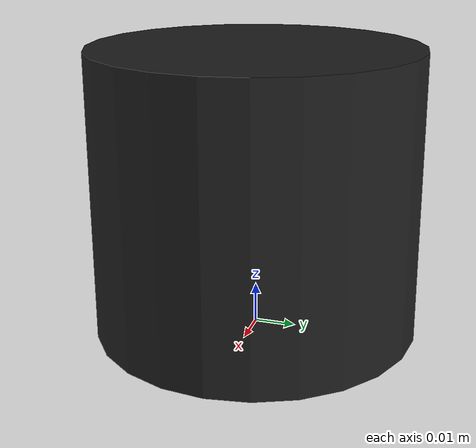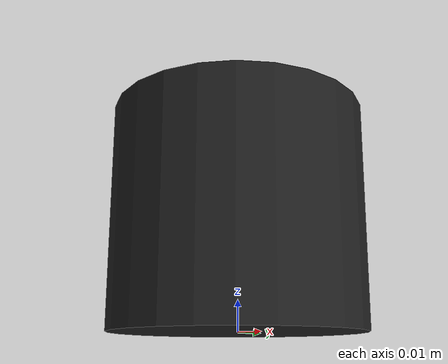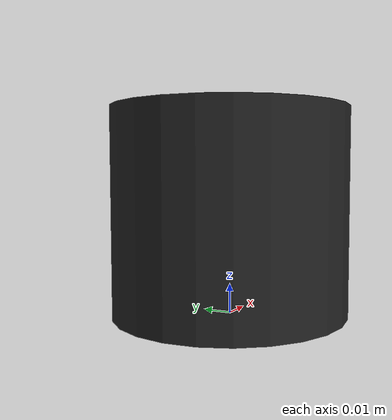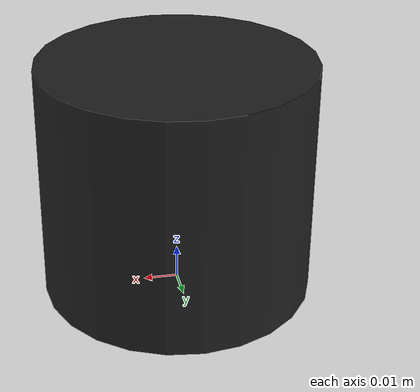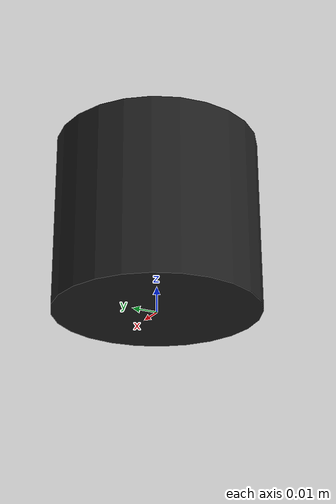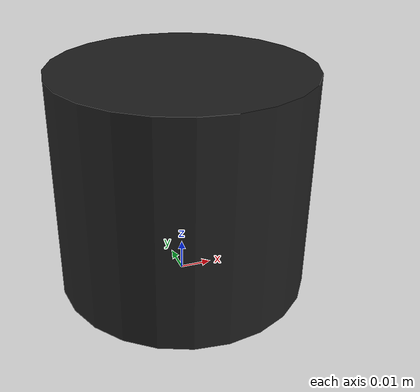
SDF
<?xml version="1.0"?>
<sdf version="1.9">
  <model name="lidar_3d_v1">
    <static>false</static>

    <link name="link">
      <inertial>
        <mass>0.12</mass>
        <inertia>
          <ixx>0.00020</ixx>
          <iyy>0.00020</iyy>
          <izz>0.00020</izz>
          <ixy>0.0</ixy>
          <ixz>0.0</ixz>
          <iyz>0.0</iyz>
        </inertia>
      </inertial>

      <visual name="visual">
        <pose>0 0 0.035 0 0 0</pose>
        <geometry>
          <cylinder>
            <radius>0.040</radius>
            <length>0.070</length>
          </cylinder>
        </geometry>
        <material>
          <ambient>0.08 0.08 0.08 1</ambient>
          <diffuse>0.12 0.12 0.12 1</diffuse>
          <specular>0.30 0.30 0.30 1</specular>
        </material>
      </visual>

      <collision name="collision">
        <pose>0 0 0.035 0 0 0</pose>
        <geometry>
          <cylinder>
            <radius>0.040</radius>
            <length>0.070</length>
          </cylinder>
        </geometry>
      </collision>

      <sensor name="lidar_3d" type="gpu_lidar">
        <pose>0 0 0.070 0 0 0</pose>

        <update_rate>10</update_rate>
        <always_on>true</always_on>
        <visualize>false</visualize>

        <lidar>
          <scan>
            <horizontal>
              <samples>720</samples>
              <resolution>1</resolution>
              <min_angle>-3.141592653589793</min_angle>
              <max_angle>3.141592653589793</max_angle>
            </horizontal>
            <vertical>
              <samples>32</samples>
              <resolution>1</resolution>
              <min_angle>-0.7853981633974483</min_angle>
              <max_angle>0.7853981633974483</max_angle>
            </vertical>
          </scan>

          <range>
            <min>0.50</min>
            <max>40.0</max>
            <resolution>0.02</resolution>
          </range>

          <noise>
            <type>gaussian</type>
            <mean>0.0</mean>
            <stddev>0.01</stddev>
          </noise>
        </lidar>
      </sensor>

    <sensor name="mapping_imu" type="imu">
        <always_on>true</always_on>
        <update_rate>200</update_rate>
        <visualize>false</visualize>

        <enable_metrics>false</enable_metrics>
        <pose>0 0 0 0 0 0</pose>

        <update_rate>200</update_rate>
        <always_on>true</always_on>
        <visualize>false</visualize>

        <imu>
          <angular_velocity>
            <x>
              <noise type="gaussian">
                <mean>0.0</mean>
                <stddev>0.00020</stddev>
              </noise>
            </x>
            <y>
              <noise type="gaussian">
                <mean>0.0</mean>
                <stddev>0.00020</stddev>
              </noise>
            </y>
            <z>
              <noise type="gaussian">
                <mean>0.0</mean>
                <stddev>0.00020</stddev>
              </noise>
            </z>
          </angular_velocity>

          <linear_acceleration>
            <x>
              <noise type="gaussian">
                <mean>0.0</mean>
                <stddev>0.017</stddev>
              </noise>
            </x>
            <y>
              <noise type="gaussian">
                <mean>0.0</mean>
                <stddev>0.017</stddev>
              </noise>
            </y>
            <z>
              <noise type="gaussian">
                <mean>0.0</mean>
                <stddev>0.017</stddev>
              </noise>
            </z>
          </linear_acceleration>
        </imu>
      </sensor>
    </link>
  </model>
</sdf>
